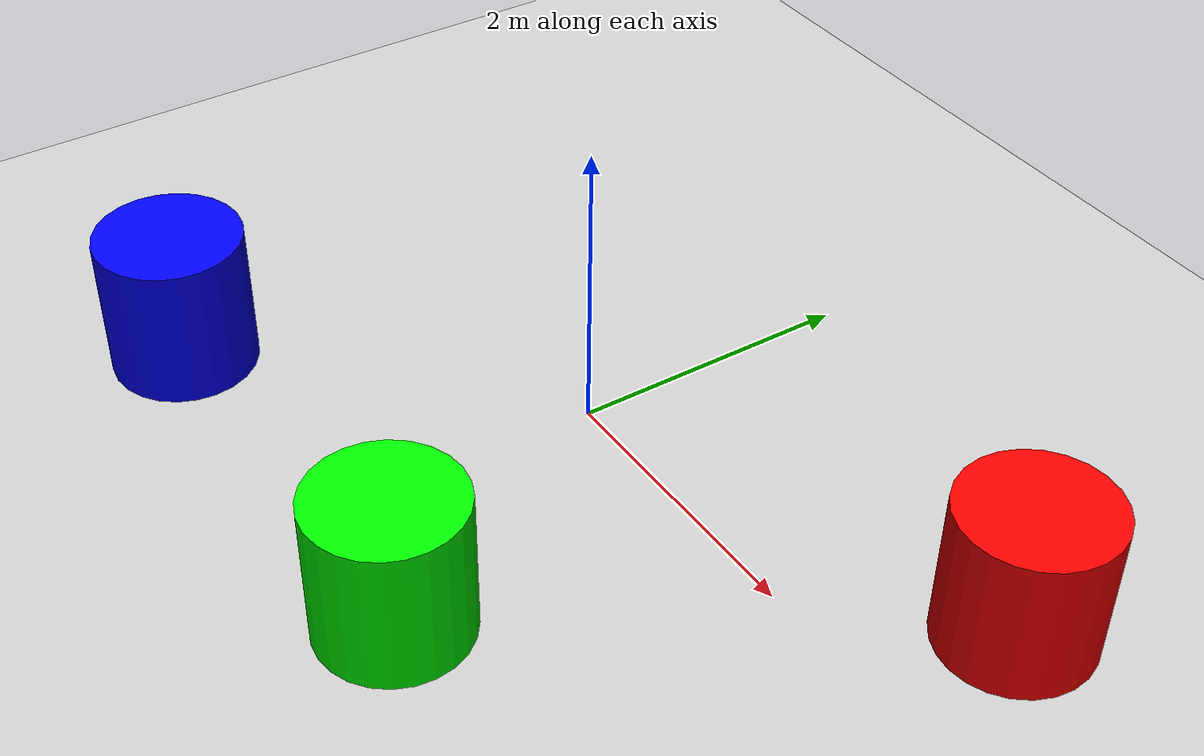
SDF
<?xml version="1.0" ?>
<sdf version="1.8">
    <world name="my_world">
        <physics name="1ms" type="ignored">
            <max_step_size>0.001</max_step_size>
            <real_time_factor>1.0</real_time_factor>
        </physics>
        <plugin filename="gz-sim-physics-system" name="gz::sim::systems::Physics"/>
        <plugin filename="gz-sim-sensors-system" name="gz::sim::systems::Sensors">
            <render_engine>ogre2</render_engine>
        </plugin>
        <plugin filename="gz-sim-scene-broadcaster-system" name="gz::sim::systems::SceneBroadcaster"/>
        <plugin filename="gz-sim-user-commands-system" name="gz::sim::systems::UserCommands"/>

        <!-- Sun -->
        <light type="directional" name="sun">
            <cast_shadows>true</cast_shadows>
            <pose>0 0 10 0 0 0</pose>
            <diffuse>0.8 0.8 0.8 1</diffuse>
            <specular>0.2 0.2 0.2 1</specular>
            <direction>-0.5 0.1 -0.9</direction>
        </light>

        <!-- Ground -->
        <model name="ground_plane">
            <static>true</static>
            <link name="link">
                <collision name="collision">
                    <geometry><plane><normal>0 0 1</normal><size>100 100</size></plane></geometry>
                </collision>
                <visual name="visual">
                    <geometry><plane><normal>0 0 1</normal><size>100 100</size></plane></geometry>
                    <material><ambient>0.8 0.8 0.8 1</ambient><diffuse>0.8 0.8 0.8 1</diffuse></material>
                </visual>
            </link>
        </model>

        <!-- Cylinder 1 -->
        <model name="cylinder_1">
            <pose>3 1 0.5 0 0 0</pose>
            <static>true</static>
            <link name="link">
                <collision name="collision"><geometry><cylinder><radius>0.5</radius><length>1.0</length></cylinder></geometry></collision>
                <visual name="visual"><geometry><cylinder><radius>0.5</radius><length>1.0</length></cylinder></geometry><material><ambient>1 0 0 1</ambient></material></visual>
            </link>
        </model>

        <!-- Cylinder 2 -->
        <model name="cylinder_2">
            <pose>1 -2 0.5 0 0 0</pose>
            <static>true</static>
            <link name="link">
                <collision name="collision"><geometry><cylinder><radius>0.5</radius><length>1.0</length></cylinder></geometry></collision>
                <visual name="visual"><geometry><cylinder><radius>0.5</radius><length>1.0</length></cylinder></geometry><material><ambient>0 1 0 1</ambient></material></visual>
            </link>
        </model>

         <!-- Cylinder 3 -->
        <model name="cylinder_3">
            <pose>-2 -2 0.5 0 0 0</pose>
            <static>true</static>
            <link name="link">
                <collision name="collision"><geometry><cylinder><radius>0.5</radius><length>1.0</length></cylinder></geometry></collision>
                <visual name="visual"><geometry><cylinder><radius>0.5</radius><length>1.0</length></cylinder></geometry><material><ambient>0 0 1 1</ambient></material></visual>
            </link>
        </model>
    </world>
</sdf>
